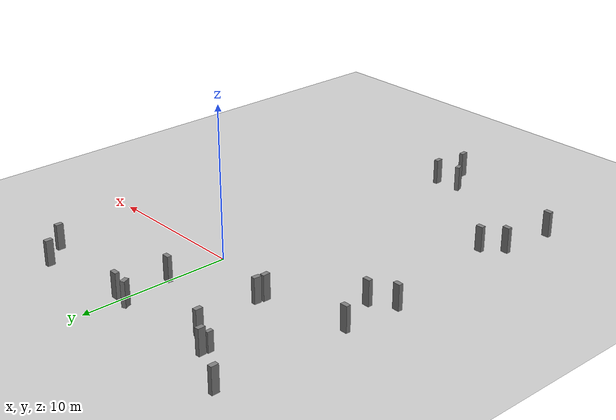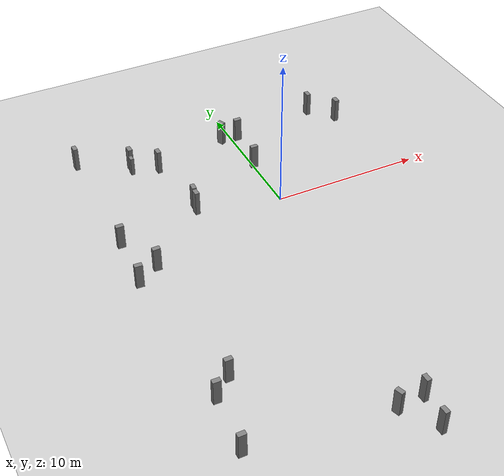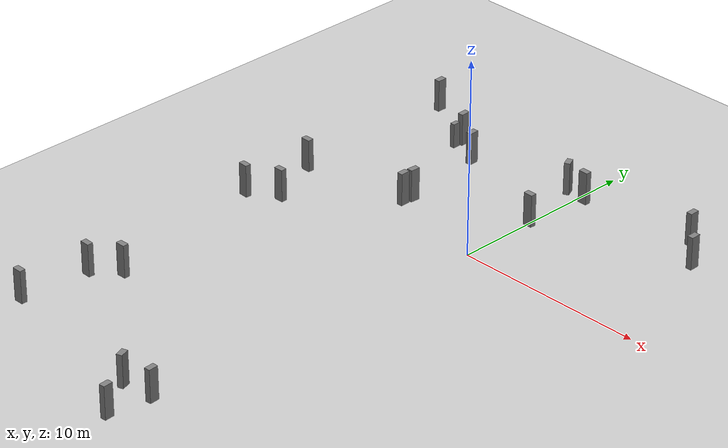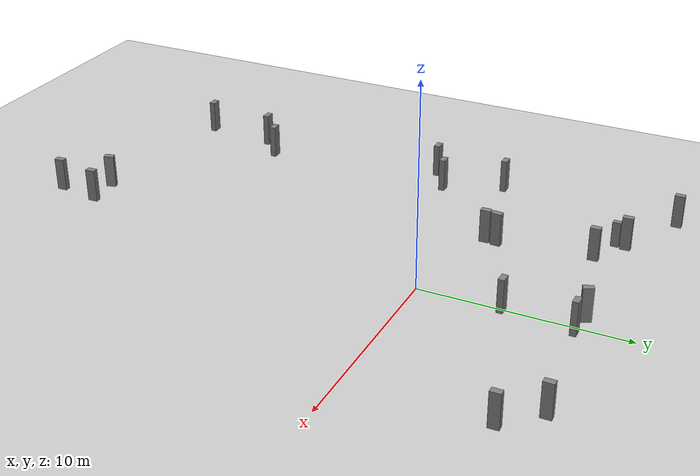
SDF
<sdf version="1.6">
 <world name="world">
  <plugin name="gazebo_ros_state" filename="libgazebo_ros_state.so">
   <ros>
    <namespace>/demo</namespace>
    <remapping>model_states:=model_states_demo</remapping>
    <remapping>link_states:=link_states_demo</remapping>
   </ros>
   <update_rate>1.0</update_rate>
  </plugin>
  <gravity>0 0 -9.8</gravity>
  <physics default="0" name="default_physics" type="ode">
   <max_step_size>0.001</max_step_size>
   <real_time_factor>1</real_time_factor>
   <real_time_update_rate>1000</real_time_update_rate>
  </physics>
  <scene><ambient>0.6 0.6 0.6 1</ambient><background>0.4 0.4 0.4 1</background><shadows>false</shadows></scene>
  <include><uri>model://sun</uri></include>
  <include><uri>model://ground_plane</uri><pose>0 0 -0.1 0 -0 0</pose></include>
  <model name="Scrubs_1">
   <static>true</static>
   <pose>-9.61916 -12.5112 0.85 0 0 -3.12353</pose>
   <link name="link">
    <collision name="collision"><geometry><box><size>0.5 0.3 1.7</size></box></geometry></collision>
    <visual name="visual">
     <geometry><box><size>0.5 0.3 1.7</size></box></geometry>
     <material><ambient>0.5 0.5 0.5 1</ambient><diffuse>0.5 0.5 0.5 1</diffuse></material>
    </visual>
   </link>
  </model>
  <model name="Scrubs_2">
   <static>true</static>
   <pose>0.054597 4.05849 0.85 0 0 3.12413</pose>
   <link name="link">
    <collision name="collision"><geometry><box><size>0.5 0.3 1.7</size></box></geometry></collision>
    <visual name="visual">
     <geometry><box><size>0.5 0.3 1.7</size></box></geometry>
     <material><ambient>0.5 0.5 0.5 1</ambient><diffuse>0.5 0.5 0.5 1</diffuse></material>
    </visual>
   </link>
  </model>
  <model name="PatientWheelChair_1">
   <static>true</static>
   <pose>-5.46091 1.23577 0.85 0 0 -1.54828</pose>
   <link name="link">
    <collision name="collision"><geometry><box><size>0.5 0.3 1.7</size></box></geometry></collision>
    <visual name="visual">
     <geometry><box><size>0.5 0.3 1.7</size></box></geometry>
     <material><ambient>0.5 0.5 0.5 1</ambient><diffuse>0.5 0.5 0.5 1</diffuse></material>
    </visual>
   </link>
  </model>
  <model name="Scrubs_3">
   <static>true</static>
   <pose>-5.38513 1.82526 0.85 0 0 -1.63757</pose>
   <link name="link">
    <collision name="collision"><geometry><box><size>0.5 0.3 1.7</size></box></geometry></collision>
    <visual name="visual">
     <geometry><box><size>0.5 0.3 1.7</size></box></geometry>
     <material><ambient>0.5 0.5 0.5 1</ambient><diffuse>0.5 0.5 0.5 1</diffuse></material>
    </visual>
   </link>
  </model>
  <model name="VisitorKidSit_1">
   <static>true</static>
   <pose>-7.69163 6.9857 0.65 0 0 1.56778</pose>
   <link name="link">
    <collision name="collision"><geometry><box><size>0.4 0.25 1.3</size></box></geometry></collision>
    <visual name="visual">
     <geometry><box><size>0.4 0.25 1.3</size></box></geometry>
     <material><ambient>0.5 0.5 0.5 1</ambient><diffuse>0.5 0.5 0.5 1</diffuse></material>
    </visual>
   </link>
  </model>
  <model name="FemaleVisitorSit_1">
   <static>true</static>
   <pose>-7.61435 7.50057 0.85 0 0 1.60052</pose>
   <link name="link">
    <collision name="collision"><geometry><box><size>0.5 0.3 1.7</size></box></geometry></collision>
    <visual name="visual">
     <geometry><box><size>0.5 0.3 1.7</size></box></geometry>
     <material><ambient>0.5 0.5 0.5 1</ambient><diffuse>0.5 0.5 0.5 1</diffuse></material>
    </visual>
   </link>
  </model>
  <model name="MaleVisitorSit_1">
   <static>true</static>
   <pose>6.41259 8.18749 0.85 0 0 -1.56624</pose>
   <link name="link">
    <collision name="collision"><geometry><box><size>0.5 0.3 1.7</size></box></geometry></collision>
    <visual name="visual">
     <geometry><box><size>0.5 0.3 1.7</size></box></geometry>
     <material><ambient>0.5 0.5 0.5 1</ambient><diffuse>0.5 0.5 0.5 1</diffuse></material>
    </visual>
   </link>
  </model>
  <model name="ElderLadyPatient_1">
   <static>true</static>
   <pose>-10.9972 0.231354 0.85 0 0 0</pose>
   <link name="link">
    <collision name="collision"><geometry><box><size>0.5 0.3 1.7</size></box></geometry></collision>
    <visual name="visual">
     <geometry><box><size>0.5 0.3 1.7</size></box></geometry>
     <material><ambient>0.5 0.5 0.5 1</ambient><diffuse>0.5 0.5 0.5 1</diffuse></material>
    </visual>
   </link>
  </model>
  <model name="ElderLadyPatient_2">
   <static>true</static>
   <pose>-10.8133 -13.5925 0.85 0 0 -0.025052</pose>
   <link name="link">
    <collision name="collision"><geometry><box><size>0.5 0.3 1.7</size></box></geometry></collision>
    <visual name="visual">
     <geometry><box><size>0.5 0.3 1.7</size></box></geometry>
     <material><ambient>0.5 0.5 0.5 1</ambient><diffuse>0.5 0.5 0.5 1</diffuse></material>
    </visual>
   </link>
  </model>
  <model name="ElderMalePatient_1">
   <static>true</static>
   <pose>-11.1165 -17.2377 0.85 0 0 0</pose>
   <link name="link">
    <collision name="collision"><geometry><box><size>0.5 0.3 1.7</size></box></geometry></collision>
    <visual name="visual">
     <geometry><box><size>0.5 0.3 1.7</size></box></geometry>
     <material><ambient>0.5 0.5 0.5 1</ambient><diffuse>0.5 0.5 0.5 1</diffuse></material>
    </visual>
   </link>
  </model>
  <model name="Scrubs_4">
   <static>true</static>
   <pose>-0.93616 -18.2252 0.85 0 0 1.62572</pose>
   <link name="link">
    <collision name="collision"><geometry><box><size>0.5 0.3 1.7</size></box></geometry></collision>
    <visual name="visual">
     <geometry><box><size>0.5 0.3 1.7</size></box></geometry>
     <material><ambient>0.5 0.5 0.5 1</ambient><diffuse>0.5 0.5 0.5 1</diffuse></material>
    </visual>
   </link>
  </model>
  <model name="Scrubs_5">
   <static>true</static>
   <pose>-2.66657 -18.3733 0.85 0 0 -1.24025</pose>
   <link name="link">
    <collision name="collision"><geometry><box><size>0.5 0.3 1.7</size></box></geometry></collision>
    <visual name="visual">
     <geometry><box><size>0.5 0.3 1.7</size></box></geometry>
     <material><ambient>0.5 0.5 0.5 1</ambient><diffuse>0.5 0.5 0.5 1</diffuse></material>
    </visual>
   </link>
  </model>
  <model name="PatientFSit_1">
   <static>true</static>
   <pose>-10.8902 9.18683 0.85 0 0 1.58161</pose>
   <link name="link">
    <collision name="collision"><geometry><box><size>0.5 0.3 1.7</size></box></geometry></collision>
    <visual name="visual">
     <geometry><box><size>0.5 0.3 1.7</size></box></geometry>
     <material><ambient>0.5 0.5 0.5 1</ambient><diffuse>0.5 0.5 0.5 1</diffuse></material>
    </visual>
   </link>
  </model>
  <model name="MaleVisitorOnPhone_1">
   <static>true</static>
   <pose>-0.760316 7.58474 0.85 0 0 -1.14974</pose>
   <link name="link">
    <collision name="collision"><geometry><box><size>0.5 0.3 1.7</size></box></geometry></collision>
    <visual name="visual">
     <geometry><box><size>0.5 0.3 1.7</size></box></geometry>
     <material><ambient>0.5 0.5 0.5 1</ambient><diffuse>0.5 0.5 0.5 1</diffuse></material>
    </visual>
   </link>
  </model>
  <model name="FemaleVisitor_1">
   <static>true</static>
   <pose>0.416835 7.44353 0.85 0 0 0</pose>
   <link name="link">
    <collision name="collision"><geometry><box><size>0.5 0.3 1.7</size></box></geometry></collision>
    <visual name="visual">
     <geometry><box><size>0.5 0.3 1.7</size></box></geometry>
     <material><ambient>0.5 0.5 0.5 1</ambient><diffuse>0.5 0.5 0.5 1</diffuse></material>
    </visual>
   </link>
  </model>
  <model name="MaleVisitorSit_2">
   <static>true</static>
   <pose>-5.98588 6.41261 0.85 0 0 1.58808</pose>
   <link name="link">
    <collision name="collision"><geometry><box><size>0.5 0.3 1.7</size></box></geometry></collision>
    <visual name="visual">
     <geometry><box><size>0.5 0.3 1.7</size></box></geometry>
     <material><ambient>0.5 0.5 0.5 1</ambient><diffuse>0.5 0.5 0.5 1</diffuse></material>
    </visual>
   </link>
  </model>
  <model name="Scrubs_6">
   <static>true</static>
   <pose>-1.29468 -20.4093 0.85 0 0 -1.51066</pose>
   <link name="link">
    <collision name="collision"><geometry><box><size>0.5 0.3 1.7</size></box></geometry></collision>
    <visual name="visual">
     <geometry><box><size>0.5 0.3 1.7</size></box></geometry>
     <material><ambient>0.5 0.5 0.5 1</ambient><diffuse>0.5 0.5 0.5 1</diffuse></material>
    </visual>
   </link>
  </model>
  <model name="FemaleVisitorSit_2">
   <static>true</static>
   <pose>7.85005 6.59766 0.85 0 0 -1.5621</pose>
   <link name="link">
    <collision name="collision"><geometry><box><size>0.5 0.3 1.7</size></box></geometry></collision>
    <visual name="visual">
     <geometry><box><size>0.5 0.3 1.7</size></box></geometry>
     <material><ambient>0.5 0.5 0.5 1</ambient><diffuse>0.5 0.5 0.5 1</diffuse></material>
    </visual>
   </link>
  </model>
  <model name="ElderMalePatient_2">
   <static>true</static>
   <pose>-11.2471 -3.5813 0.85 0 0 -0.054192</pose>
   <link name="link">
    <collision name="collision"><geometry><box><size>0.5 0.3 1.7</size></box></geometry></collision>
    <visual name="visual">
     <geometry><box><size>0.5 0.3 1.7</size></box></geometry>
     <material><ambient>0.5 0.5 0.5 1</ambient><diffuse>0.5 0.5 0.5 1</diffuse></material>
    </visual>
   </link>
  </model>
  <model name="Scrubs_7">
   <static>true</static>
   <pose>-9.75875 -2.67552 0.85 0 0 0</pose>
   <link name="link">
    <collision name="collision"><geometry><box><size>0.5 0.3 1.7</size></box></geometry></collision>
    <visual name="visual">
     <geometry><box><size>0.5 0.3 1.7</size></box></geometry>
     <material><ambient>0.5 0.5 0.5 1</ambient><diffuse>0.5 0.5 0.5 1</diffuse></material>
    </visual>
   </link>
  </model>
 </world>
</sdf>
